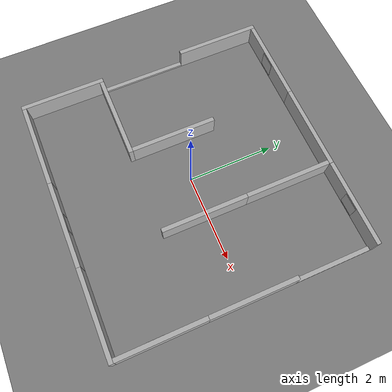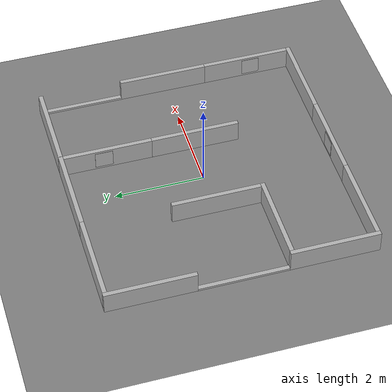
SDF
<sdf version="1.10">
 <world name="default">
  <gravity>0 0 -9.8000000000000007</gravity>
  <magnetic_field>6.0000000000000002e-06 2.3e-05 -4.1999999999999998e-05</magnetic_field>
  <atmosphere type="adiabatic"/>
  <physics name="default_physics" default="false" type="ode">
   <max_step_size>0.001</max_step_size>
   <real_time_factor>1</real_time_factor>
   <real_time_update_rate>1000</real_time_update_rate>
  </physics>
  <scene>
   <ambient>0.400000006 0.400000006 0.400000006 1</ambient>
   <background>0.699999988 0.699999988 0.699999988 1</background>
   <shadows>true</shadows>
  </scene>
  <audio><device>default</device></audio>
  <spherical_coordinates>
   <surface_model>EARTH_WGS84</surface_model>
   <latitude_deg>0</latitude_deg>
   <longitude_deg>0</longitude_deg>
   <elevation>0</elevation>
   <heading_deg>0</heading_deg>
  </spherical_coordinates>
  <model name="ground_plane">
   <static>true</static>
   <link name="link">
    <collision name="collision">
     <geometry><plane><normal>0 0 1</normal><size>100 100</size></plane></geometry>
     <surface>
      <contact><collide_bitmask>65535</collide_bitmask></contact>
      <friction><ode><mu>100</mu><mu2>50</mu2></ode></friction>
     </surface>
    </collision>
    <visual name="visual">
     <cast_shadows>false</cast_shadows>
     <geometry><plane><normal>0 0 1</normal><size>100 100</size></plane></geometry>
     <material>
      <ambient>0.5 0.5 0.5 1</ambient>
      <diffuse>0.5 0.5 0.5 1</diffuse>
      <specular>0.100000001 0.100000001 0.100000001 1</specular>
      <emissive>0 0 0 1</emissive>
     </material>
    </visual>
    <inertial>
     <mass>1</mass>
     <inertia><ixx>1</ixx><ixy>0</ixy><ixz>0</ixz><iyy>1</iyy><iyz>0</iyz><izz>1</izz></inertia>
    </inertial>
   </link>
  </model>
  <model name="minimaze">
   <link name="link_0">
    <inertial>
     <mass>1</mass>
     <inertia>
      <ixx>0.16666700000000001</ixx>
      <ixy>0</ixy>
      <ixz>0</ixz>
      <iyy>0.16666700000000001</iyy>
      <iyz>0</iyz>
      <izz>0.16666700000000001</izz>
     </inertia>
    </inertial>
    <pose>-2.9532099999999999 -1.925 0 0 0 0</pose>
    <visual name="visual">
     <geometry><mesh><uri>file://meshes/bricks1.dae</uri><scale>1 1 1</scale></mesh></geometry>
     <material>
      <lighting>true</lighting>
      <shader type="vertex"><normal_map>__default__</normal_map></shader>
      <ambient>0.300000012 0.300000012 0.300000012 1</ambient>
      <diffuse>0.699999988 0.699999988 0.699999988 1</diffuse>
      <specular>0.00999999978 0.00999999978 0.00999999978 1</specular>
      <emissive>0.5 0.5 0.5 1</emissive>
     </material>
    </visual>
    <collision name="collision">
     <geometry><mesh><uri>file://meshes/bricks1.dae</uri><scale>1 1 1</scale></mesh></geometry>
     <surface>
      <friction>
       <ode><mu>1</mu><mu2>1</mu2><fdir1>0 0 0</fdir1><slip1>0</slip1><slip2>0</slip2></ode>
       <torsional>
        <coefficient>1</coefficient>
        <patch_radius>0</patch_radius>
        <surface_radius>0</surface_radius>
        <use_patch_radius>true</use_patch_radius>
        <ode><slip>0</slip></ode>
       </torsional>
      </friction>
      <bounce><restitution_coefficient>0</restitution_coefficient><threshold>1000000</threshold></bounce>
      <contact>
       <collide_without_contact>false</collide_without_contact>
       <collide_without_contact_bitmask>1</collide_without_contact_bitmask>
       <collide_bitmask>1</collide_bitmask>
       <ode>
        <soft_cfm>0</soft_cfm>
        <soft_erp>0.20000000000000001</soft_erp>
        <kp>10000000000000</kp>
        <kd>1</kd>
        <max_vel>0.01</max_vel>
        <min_depth>0</min_depth>
       </ode>
       <bullet>
        <split_impulse>true</split_impulse>
        <split_impulse_penetration_threshold>-0.01</split_impulse_penetration_threshold>
        <soft_cfm>0</soft_cfm>
        <soft_erp>0.20000000000000001</soft_erp>
        <kp>10000000000000</kp>
        <kd>1</kd>
       </bullet>
      </contact>
     </surface>
    </collision>
   </link>
   <link name="link_0_0">
    <inertial>
     <mass>0.00194483</mass>
     <inertia>
      <ixx>0.00047543999999999999</ixx>
      <ixy>0</ixy>
      <ixz>0</ixz>
      <iyy>4.7999999999999996e-07</iyy>
      <iyz>0</iyz>
      <izz>0.00047572000000000001</izz>
     </inertia>
    </inertial>
    <pose>-2.9532099999999977 0.074598999999990603 -0.22701100000007818 -3.8000000039114689e-05 -1.0000000010293332e-05 5.8672011324199347e-19</pose>
    <visual name="visual">
     <geometry><box><size>0.10000000000000001 2 0.050000000000000003</size></box></geometry>
     <material>
      <lighting>true</lighting>
      <shader type="vertex"><normal_map>__default__</normal_map></shader>
      <ambient>0.300000012 0.300000012 0.300000012 1</ambient>
      <diffuse>0.699999988 0.699999988 0.699999988 1</diffuse>
      <specular>0.00999999978 0.00999999978 0.00999999978 1</specular>
      <emissive>0.400000006 0.400000006 0.400000006 1</emissive>
     </material>
    </visual>
    <collision name="collision">
     <geometry><box><size>0.099999000000000005 2 0.050000000000000003</size></box></geometry>
     <surface>
      <friction>
       <ode><mu>1</mu><mu2>1</mu2><fdir1>0 0 0</fdir1><slip1>0</slip1><slip2>0</slip2></ode>
       <torsional>
        <coefficient>1</coefficient>
        <patch_radius>0</patch_radius>
        <surface_radius>0</surface_radius>
        <use_patch_radius>true</use_patch_radius>
        <ode><slip>0</slip></ode>
       </torsional>
      </friction>
      <bounce><restitution_coefficient>0</restitution_coefficient><threshold>1000000</threshold></bounce>
      <contact>
       <collide_without_contact>false</collide_without_contact>
       <collide_without_contact_bitmask>1</collide_without_contact_bitmask>
       <collide_bitmask>1</collide_bitmask>
       <ode>
        <soft_cfm>0</soft_cfm>
        <soft_erp>0.20000000000000001</soft_erp>
        <kp>10000000000000</kp>
        <kd>1</kd>
        <max_vel>0.01</max_vel>
        <min_depth>0</min_depth>
       </ode>
       <bullet>
        <split_impulse>true</split_impulse>
        <split_impulse_penetration_threshold>-0.01</split_impulse_penetration_threshold>
        <soft_cfm>0</soft_cfm>
        <soft_erp>0.20000000000000001</soft_erp>
        <kp>10000000000000</kp>
        <kd>1</kd>
       </bullet>
      </contact>
     </surface>
    </collision>
   </link>
   <link name="link_0_0_clone">
    <inertial>
     <mass>0.0017755399999999999</mass>
     <inertia>
      <ixx>0.00049366000000000004</ixx>
      <ixy>0</ixy>
      <ixz>0</ixz>
      <iyy>3.8000000000000001e-07</iyy>
      <iyz>0</iyz>
      <izz>0.00049330999999999995</izz>
     </inertia>
    </inertial>
    <pose>3.0467900000000028 2.0737299999999905 -0.22701100000009458 -7.6000000078229338e-05 -2.0000000020586663e-05 7.8229386356444956e-19</pose>
    <visual name="visual_0">
     <geometry><box><size>0.10000000000000001 1.8009999999999999 0.050000000000000003</size></box></geometry>
     <material>
      <lighting>true</lighting>
      <shader type="vertex"><normal_map>__default__</normal_map></shader>
      <ambient>0.300000012 0.300000012 0.300000012 1</ambient>
      <diffuse>0.699999988 0.699999988 0.699999988 1</diffuse>
      <specular>0.00999999978 0.00999999978 0.00999999978 1</specular>
      <emissive>0.400000006 0.400000006 0.400000006 1</emissive>
     </material>
    </visual>
    <collision name="collision">
     <geometry><box><size>0.10000000000000001 1.8009999999999999 0.050000000000000003</size></box></geometry>
     <surface>
      <friction>
       <ode><mu>1</mu><mu2>1</mu2><fdir1>0 0 0</fdir1><slip1>0</slip1><slip2>0</slip2></ode>
       <torsional>
        <coefficient>1</coefficient>
        <patch_radius>0</patch_radius>
        <surface_radius>0</surface_radius>
        <use_patch_radius>true</use_patch_radius>
        <ode><slip>0</slip></ode>
       </torsional>
      </friction>
      <bounce><restitution_coefficient>0</restitution_coefficient><threshold>1000000</threshold></bounce>
      <contact>
       <collide_without_contact>false</collide_without_contact>
       <collide_without_contact_bitmask>1</collide_without_contact_bitmask>
       <collide_bitmask>1</collide_bitmask>
       <ode>
        <soft_cfm>0</soft_cfm>
        <soft_erp>0.20000000000000001</soft_erp>
        <kp>10000000000000</kp>
        <kd>1</kd>
        <max_vel>0.01</max_vel>
        <min_depth>0</min_depth>
       </ode>
       <bullet>
        <split_impulse>true</split_impulse>
        <split_impulse_penetration_threshold>-0.01</split_impulse_penetration_threshold>
        <soft_cfm>0</soft_cfm>
        <soft_erp>0.20000000000000001</soft_erp>
        <kp>10000000000000</kp>
        <kd>1</kd>
       </bullet>
      </contact>
     </surface>
    </collision>
   </link>
   <link name="link_0_clone">
    <inertial>
     <mass>1</mass>
     <inertia>
      <ixx>0.16666700000000001</ixx>
      <ixy>0</ixy>
      <ixz>0</ixz>
      <iyy>0.16666700000000001</iyy>
      <iyz>0</iyz>
      <izz>0.16666700000000001</izz>
     </inertia>
    </inertial>
    <pose>-2.9532100000000003 2.0749999999999993 -1.5640266859406893e-13 -8.9778743081863446e-49 -6.9462937961096311e-23 2.5849394142282115e-26</pose>
    <visual name="visual">
     <geometry><mesh><uri>file://meshes/bricks1.dae</uri><scale>1 1 1</scale></mesh></geometry>
     <material>
      <lighting>true</lighting>
      <shader type="vertex"><normal_map>__default__</normal_map></shader>
      <ambient>0.300000012 0.300000012 0.300000012 1</ambient>
      <diffuse>0.699999988 0.699999988 0.699999988 1</diffuse>
      <specular>0.00999999978 0.00999999978 0.00999999978 1</specular>
      <emissive>0.5 0.5 0.5 1</emissive>
     </material>
    </visual>
    <collision name="collision">
     <geometry><mesh><uri>file://meshes/bricks1.dae</uri><scale>1 1 1</scale></mesh></geometry>
     <surface>
      <friction>
       <ode><mu>1</mu><mu2>1</mu2><fdir1>0 0 0</fdir1><slip1>0</slip1><slip2>0</slip2></ode>
       <torsional>
        <coefficient>1</coefficient>
        <patch_radius>0</patch_radius>
        <surface_radius>0</surface_radius>
        <use_patch_radius>true</use_patch_radius>
        <ode><slip>0</slip></ode>
       </torsional>
      </friction>
      <bounce><restitution_coefficient>0</restitution_coefficient><threshold>1000000</threshold></bounce>
      <contact>
       <collide_without_contact>false</collide_without_contact>
       <collide_without_contact_bitmask>1</collide_without_contact_bitmask>
       <collide_bitmask>1</collide_bitmask>
       <ode>
        <soft_cfm>0</soft_cfm>
        <soft_erp>0.20000000000000001</soft_erp>
        <kp>10000000000000</kp>
        <kd>1</kd>
        <max_vel>0.01</max_vel>
        <min_depth>0</min_depth>
       </ode>
       <bullet>
        <split_impulse>true</split_impulse>
        <split_impulse_penetration_threshold>-0.01</split_impulse_penetration_threshold>
        <soft_cfm>0</soft_cfm>
        <soft_erp>0.20000000000000001</soft_erp>
        <kp>10000000000000</kp>
        <kd>1</kd>
       </bullet>
      </contact>
     </surface>
    </collision>
   </link>
   <link name="link_0_clone_0">
    <inertial>
     <mass>1</mass>
     <inertia>
      <ixx>0.16666700000000001</ixx>
      <ixy>0</ixy>
      <ixz>0</ixz>
      <iyy>0.16666700000000001</iyy>
      <iyz>0</iyz>
      <izz>0.16666700000000001</izz>
     </inertia>
    </inertial>
    <pose>3.046790000000001 -1.8250000000000004 5.7898130734201914e-14 -8.9778743081863446e-49 -6.9462937961096311e-23 2.5849394142282115e-26</pose>
    <visual name="visual">
     <geometry><mesh><uri>file://meshes/bricks1.dae</uri><scale>1 1 1</scale></mesh></geometry>
     <material>
      <lighting>true</lighting>
      <shader type="vertex"><normal_map>__default__</normal_map></shader>
      <ambient>0.300000012 0.300000012 0.300000012 1</ambient>
      <diffuse>0.699999988 0.699999988 0.699999988 1</diffuse>
      <specular>0.00999999978 0.00999999978 0.00999999978 1</specular>
      <emissive>0.5 0.5 0.5 1</emissive>
     </material>
    </visual>
    <collision name="collision">
     <geometry><mesh><uri>file://meshes/bricks1.dae</uri><scale>1 1 1</scale></mesh></geometry>
     <surface>
      <friction>
       <ode><mu>1</mu><mu2>1</mu2><fdir1>0 0 0</fdir1><slip1>0</slip1><slip2>0</slip2></ode>
       <torsional>
        <coefficient>1</coefficient>
        <patch_radius>0</patch_radius>
        <surface_radius>0</surface_radius>
        <use_patch_radius>true</use_patch_radius>
        <ode><slip>0</slip></ode>
       </torsional>
      </friction>
      <bounce><restitution_coefficient>0</restitution_coefficient><threshold>1000000</threshold></bounce>
      <contact>
       <collide_without_contact>false</collide_without_contact>
       <collide_without_contact_bitmask>1</collide_without_contact_bitmask>
       <collide_bitmask>1</collide_bitmask>
       <ode>
        <soft_cfm>0</soft_cfm>
        <soft_erp>0.20000000000000001</soft_erp>
        <kp>10000000000000</kp>
        <kd>1</kd>
        <max_vel>0.01</max_vel>
        <min_depth>0</min_depth>
       </ode>
       <bullet>
        <split_impulse>true</split_impulse>
        <split_impulse_penetration_threshold>-0.01</split_impulse_penetration_threshold>
        <soft_cfm>0</soft_cfm>
        <soft_erp>0.20000000000000001</soft_erp>
        <kp>10000000000000</kp>
        <kd>1</kd>
       </bullet>
      </contact>
     </surface>
    </collision>
   </link>
   <link name="link_0_clone_1">
    <inertial>
     <mass>1</mass>
     <inertia>
      <ixx>0.16666700000000001</ixx>
      <ixy>0</ixy>
      <ixz>0</ixz>
      <iyy>0.16666700000000001</iyy>
      <iyz>0</iyz>
      <izz>0.16666700000000001</izz>
     </inertia>
    </inertial>
    <pose>3.0467900000000006 0.1749999999999996 -2.0289325775024736e-14 -8.9778743081863446e-49 -6.9462937961096311e-23 2.5849394142282115e-26</pose>
    <visual name="visual">
     <geometry><mesh><uri>file://meshes/bricks1.dae</uri><scale>1 1 1</scale></mesh></geometry>
     <material>
      <lighting>true</lighting>
      <shader type="vertex"><normal_map>__default__</normal_map></shader>
      <ambient>0.300000012 0.300000012 0.300000012 1</ambient>
      <diffuse>0.699999988 0.699999988 0.699999988 1</diffuse>
      <specular>0.00999999978 0.00999999978 0.00999999978 1</specular>
      <emissive>0.5 0.5 0.5 1</emissive>
     </material>
    </visual>
    <collision name="collision">
     <geometry><mesh><uri>file://meshes/bricks1.dae</uri><scale>1 1 1</scale></mesh></geometry>
     <surface>
      <friction>
       <ode><mu>1</mu><mu2>1</mu2><fdir1>0 0 0</fdir1><slip1>0</slip1><slip2>0</slip2></ode>
       <torsional>
        <coefficient>1</coefficient>
        <patch_radius>0</patch_radius>
        <surface_radius>0</surface_radius>
        <use_patch_radius>true</use_patch_radius>
        <ode><slip>0</slip></ode>
       </torsional>
      </friction>
      <bounce><restitution_coefficient>0</restitution_coefficient><threshold>1000000</threshold></bounce>
      <contact>
       <collide_without_contact>false</collide_without_contact>
       <collide_without_contact_bitmask>1</collide_without_contact_bitmask>
       <collide_bitmask>1</collide_bitmask>
       <ode>
        <soft_cfm>0</soft_cfm>
        <soft_erp>0.20000000000000001</soft_erp>
        <kp>10000000000000</kp>
        <kd>1</kd>
        <max_vel>0.01</max_vel>
        <min_depth>0</min_depth>
       </ode>
       <bullet>
        <split_impulse>true</split_impulse>
        <split_impulse_penetration_threshold>-0.01</split_impulse_penetration_threshold>
        <soft_cfm>0</soft_cfm>
        <soft_erp>0.20000000000000001</soft_erp>
        <kp>10000000000000</kp>
        <kd>1</kd>
       </bullet>
      </contact>
     </surface>
    </collision>
   </link>
   <link name="link_0_clone_1_clone">
    <inertial>
     <mass>1</mass>
     <inertia>
      <ixx>0.16666700000000001</ixx>
      <ixy>0</ixy>
      <ixz>0</ixz>
      <iyy>0.16666700000000001</iyy>
      <iyz>0</iyz>
      <izz>0.16666700000000001</izz>
     </inertia>
    </inertial>
    <pose>1.0467900000000006 1.9749999999999996 -1.1138312494551883e-13 -8.9778743081863446e-49 -6.9462937961096311e-23 2.5849394142282115e-26</pose>
    <visual name="visual">
     <geometry><mesh><uri>file://meshes/bricks1.dae</uri><scale>1 1 1</scale></mesh></geometry>
     <material>
      <lighting>true</lighting>
      <shader type="vertex"><normal_map>__default__</normal_map></shader>
      <ambient>0.300000012 0.300000012 0.300000012 1</ambient>
      <diffuse>0.699999988 0.699999988 0.699999988 1</diffuse>
      <specular>0.00999999978 0.00999999978 0.00999999978 1</specular>
      <emissive>0.5 0.5 0.5 1</emissive>
     </material>
    </visual>
    <collision name="collision">
     <geometry><mesh><uri>file://meshes/bricks1.dae</uri><scale>1 1 1</scale></mesh></geometry>
     <surface>
      <friction>
       <ode><mu>1</mu><mu2>1</mu2><fdir1>0 0 0</fdir1><slip1>0</slip1><slip2>0</slip2></ode>
       <torsional>
        <coefficient>1</coefficient>
        <patch_radius>0</patch_radius>
        <surface_radius>0</surface_radius>
        <use_patch_radius>true</use_patch_radius>
        <ode><slip>0</slip></ode>
       </torsional>
      </friction>
      <bounce><restitution_coefficient>0</restitution_coefficient><threshold>1000000</threshold></bounce>
      <contact>
       <collide_without_contact>false</collide_without_contact>
       <collide_without_contact_bitmask>1</collide_without_contact_bitmask>
       <collide_bitmask>1</collide_bitmask>
       <ode>
        <soft_cfm>0</soft_cfm>
        <soft_erp>0.20000000000000001</soft_erp>
        <kp>10000000000000</kp>
        <kd>1</kd>
        <max_vel>0.01</max_vel>
        <min_depth>0</min_depth>
       </ode>
       <bullet>
        <split_impulse>true</split_impulse>
        <split_impulse_penetration_threshold>-0.01</split_impulse_penetration_threshold>
        <soft_cfm>0</soft_cfm>
        <soft_erp>0.20000000000000001</soft_erp>
        <kp>10000000000000</kp>
        <kd>1</kd>
       </bullet>
      </contact>
     </surface>
    </collision>
   </link>
   <link name="link_0_clone_1_clone_0">
    <inertial>
     <mass>1</mass>
     <inertia>
      <ixx>0.16666700000000001</ixx>
      <ixy>0</ixy>
      <ixz>0</ixz>
      <iyy>0.16666700000000001</iyy>
      <iyz>0</iyz>
      <izz>0.16666700000000001</izz>
     </inertia>
    </inertial>
    <pose>1.0467900000000006 -0.02500000000000055 -3.3112401709445294e-14 -8.9778743081863446e-49 -6.9462937961096311e-23 2.5849394142282115e-26</pose>
    <visual name="visual">
     <geometry><mesh><uri>file://meshes/bricks1.dae</uri><scale>1 1 1</scale></mesh></geometry>
     <material>
      <lighting>true</lighting>
      <shader type="vertex"><normal_map>__default__</normal_map></shader>
      <ambient>0.300000012 0.300000012 0.300000012 1</ambient>
      <diffuse>0.699999988 0.699999988 0.699999988 1</diffuse>
      <specular>0.00999999978 0.00999999978 0.00999999978 1</specular>
      <emissive>0.5 0.5 0.5 1</emissive>
     </material>
    </visual>
    <collision name="collision">
     <geometry><mesh><uri>file://meshes/bricks1.dae</uri><scale>1 1 1</scale></mesh></geometry>
     <surface>
      <friction>
       <ode><mu>1</mu><mu2>1</mu2><fdir1>0 0 0</fdir1><slip1>0</slip1><slip2>0</slip2></ode>
       <torsional>
        <coefficient>1</coefficient>
        <patch_radius>0</patch_radius>
        <surface_radius>0</surface_radius>
        <use_patch_radius>true</use_patch_radius>
        <ode><slip>0</slip></ode>
       </torsional>
      </friction>
      <bounce><restitution_coefficient>0</restitution_coefficient><threshold>1000000</threshold></bounce>
      <contact>
       <collide_without_contact>false</collide_without_contact>
       <collide_without_contact_bitmask>1</collide_without_contact_bitmask>
       <collide_bitmask>1</collide_bitmask>
       <ode>
        <soft_cfm>0</soft_cfm>
        <soft_erp>0.20000000000000001</soft_erp>
        <kp>10000000000000</kp>
        <kd>1</kd>
        <max_vel>0.01</max_vel>
        <min_depth>0</min_depth>
       </ode>
       <bullet>
        <split_impulse>true</split_impulse>
        <split_impulse_penetration_threshold>-0.01</split_impulse_penetration_threshold>
        <soft_cfm>0</soft_cfm>
        <soft_erp>0.20000000000000001</soft_erp>
        <kp>10000000000000</kp>
        <kd>1</kd>
       </bullet>
      </contact>
     </surface>
    </collision>
   </link>
   <link name="link_0_clone_1_clone_1">
    <inertial>
     <mass>1</mass>
     <inertia>
      <ixx>0.16666700000000001</ixx>
      <ixy>0</ixy>
      <ixz>0</ixz>
      <iyy>0.16666700000000001</iyy>
      <iyz>0</iyz>
      <izz>0.16666700000000001</izz>
     </inertia>
    </inertial>
    <pose>-0.95321399999999956 0.074999999999999484 -5.7565063826814367e-14 -8.9778743081863446e-49 -6.9462937961096311e-23 2.5849394142282115e-26</pose>
    <visual name="visual">
     <geometry><mesh><uri>file://meshes/bricks1.dae</uri><scale>1 1 1</scale></mesh></geometry>
     <material>
      <lighting>true</lighting>
      <shader type="vertex"><normal_map>__default__</normal_map></shader>
      <ambient>0.300000012 0.300000012 0.300000012 1</ambient>
      <diffuse>0.699999988 0.699999988 0.699999988 1</diffuse>
      <specular>0.00999999978 0.00999999978 0.00999999978 1</specular>
      <emissive>0.5 0.5 0.5 1</emissive>
     </material>
    </visual>
    <collision name="collision">
     <geometry><mesh><uri>file://meshes/bricks1.dae</uri><scale>1 1 1</scale></mesh></geometry>
     <surface>
      <friction>
       <ode><mu>1</mu><mu2>1</mu2><fdir1>0 0 0</fdir1><slip1>0</slip1><slip2>0</slip2></ode>
       <torsional>
        <coefficient>1</coefficient>
        <patch_radius>0</patch_radius>
        <surface_radius>0</surface_radius>
        <use_patch_radius>true</use_patch_radius>
        <ode><slip>0</slip></ode>
       </torsional>
      </friction>
      <bounce><restitution_coefficient>0</restitution_coefficient><threshold>1000000</threshold></bounce>
      <contact>
       <collide_without_contact>false</collide_without_contact>
       <collide_without_contact_bitmask>1</collide_without_contact_bitmask>
       <collide_bitmask>1</collide_bitmask>
       <ode>
        <soft_cfm>0</soft_cfm>
        <soft_erp>0.20000000000000001</soft_erp>
        <kp>10000000000000</kp>
        <kd>1</kd>
        <max_vel>0.01</max_vel>
        <min_depth>0</min_depth>
       </ode>
       <bullet>
        <split_impulse>true</split_impulse>
        <split_impulse_penetration_threshold>-0.01</split_impulse_penetration_threshold>
        <soft_cfm>0</soft_cfm>
        <soft_erp>0.20000000000000001</soft_erp>
        <kp>10000000000000</kp>
        <kd>1</kd>
       </bullet>
      </contact>
     </surface>
    </collision>
   </link>
   <link name="link_1">
    <inertial>
     <mass>1</mass>
     <inertia>
      <ixx>0.16666700000000001</ixx>
      <ixy>0</ixy>
      <ixz>0</ixz>
      <iyy>0.16666700000000001</iyy>
      <iyz>0</iyz>
      <izz>0.16666700000000001</izz>
     </inertia>
    </inertial>
    <pose>-1.9032099999999998 -0.97500000000000064 -2.6284530108000581e-14 -8.9778743081863446e-49 -6.9462937961096311e-23 2.5849394142282115e-26</pose>
    <visual name="visual">
     <geometry><mesh><uri>file://meshes/bricks2.dae</uri><scale>1 1 1</scale></mesh></geometry>
     <material>
      <lighting>true</lighting>
      <shader type="vertex"><normal_map>__default__</normal_map></shader>
      <ambient>0.300000012 0.300000012 0.300000012 1</ambient>
      <diffuse>0.699999988 0.699999988 0.699999988 1</diffuse>
      <specular>0.00999999978 0.00999999978 0.00999999978 1</specular>
      <emissive>0.5 0.5 0.5 1</emissive>
     </material>
    </visual>
    <collision name="collision">
     <geometry><mesh><uri>file://meshes/bricks2.dae</uri><scale>1 1 1</scale></mesh></geometry>
     <surface>
      <friction>
       <ode><mu>1</mu><mu2>1</mu2><fdir1>0 0 0</fdir1><slip1>0</slip1><slip2>0</slip2></ode>
       <torsional>
        <coefficient>1</coefficient>
        <patch_radius>0</patch_radius>
        <surface_radius>0</surface_radius>
        <use_patch_radius>true</use_patch_radius>
        <ode><slip>0</slip></ode>
       </torsional>
      </friction>
      <bounce><restitution_coefficient>0</restitution_coefficient><threshold>1000000</threshold></bounce>
      <contact>
       <collide_without_contact>false</collide_without_contact>
       <collide_without_contact_bitmask>1</collide_without_contact_bitmask>
       <collide_bitmask>1</collide_bitmask>
       <ode>
        <soft_cfm>0</soft_cfm>
        <soft_erp>0.20000000000000001</soft_erp>
        <kp>10000000000000</kp>
        <kd>1</kd>
        <max_vel>0.01</max_vel>
        <min_depth>0</min_depth>
       </ode>
       <bullet>
        <split_impulse>true</split_impulse>
        <split_impulse_penetration_threshold>-0.01</split_impulse_penetration_threshold>
        <soft_cfm>0</soft_cfm>
        <soft_erp>0.20000000000000001</soft_erp>
        <kp>10000000000000</kp>
        <kd>1</kd>
       </bullet>
      </contact>
     </surface>
    </collision>
   </link>
   <link name="link_1_clone">
    <inertial>
     <mass>1</mass>
     <inertia>
      <ixx>0.16666700000000001</ixx>
      <ixy>0</ixy>
      <ixz>0</ixz>
      <iyy>0.16666700000000001</iyy>
      <iyz>0</iyz>
      <izz>0.16666700000000001</izz>
     </inertia>
    </inertial>
    <pose>-1.9032099999999996 -2.8750000000000004 4.7961634663806763e-14 -8.9778743081863446e-49 -6.9462937961096311e-23 2.5849394142282115e-26</pose>
    <visual name="visual">
     <geometry><mesh><uri>file://meshes/bricks2.dae</uri><scale>1 1 1</scale></mesh></geometry>
     <material>
      <lighting>true</lighting>
      <shader type="vertex"><normal_map>__default__</normal_map></shader>
      <ambient>0.300000012 0.300000012 0.300000012 1</ambient>
      <diffuse>0.699999988 0.699999988 0.699999988 1</diffuse>
      <specular>0.00999999978 0.00999999978 0.00999999978 1</specular>
      <emissive>0.5 0.5 0.5 1</emissive>
     </material>
    </visual>
    <collision name="collision">
     <geometry><mesh><uri>file://meshes/bricks2.dae</uri><scale>1 1 1</scale></mesh></geometry>
     <surface>
      <friction>
       <ode><mu>1</mu><mu2>1</mu2><fdir1>0 0 0</fdir1><slip1>0</slip1><slip2>0</slip2></ode>
       <torsional>
        <coefficient>1</coefficient>
        <patch_radius>0</patch_radius>
        <surface_radius>0</surface_radius>
        <use_patch_radius>true</use_patch_radius>
        <ode><slip>0</slip></ode>
       </torsional>
      </friction>
      <bounce><restitution_coefficient>0</restitution_coefficient><threshold>1000000</threshold></bounce>
      <contact>
       <collide_without_contact>false</collide_without_contact>
       <collide_without_contact_bitmask>1</collide_without_contact_bitmask>
       <collide_bitmask>1</collide_bitmask>
       <ode>
        <soft_cfm>0</soft_cfm>
        <soft_erp>0.20000000000000001</soft_erp>
        <kp>10000000000000</kp>
        <kd>1</kd>
        <max_vel>0.01</max_vel>
        <min_depth>0</min_depth>
       </ode>
       <bullet>
        <split_impulse>true</split_impulse>
        <split_impulse_penetration_threshold>-0.01</split_impulse_penetration_threshold>
        <soft_cfm>0</soft_cfm>
        <soft_erp>0.20000000000000001</soft_erp>
        <kp>10000000000000</kp>
        <kd>1</kd>
       </bullet>
      </contact>
     </surface>
    </collision>
   </link>
   <link name="link_1_clone_0">
    <inertial>
     <mass>1</mass>
     <inertia>
      <ixx>0.16666700000000001</ixx>
      <ixy>0</ixy>
      <ixz>0</ixz>
      <iyy>0.16666700000000001</iyy>
      <iyz>0</iyz>
      <izz>0.16666700000000001</izz>
     </inertia>
    </inertial>
    <pose>0.096786000000000261 -2.8750000000000004 6.8556271770603416e-14 -8.9778743081863446e-49 -6.9462937961096311e-23 2.5849394142282115e-26</pose>
    <visual name="visual">
     <geometry><mesh><uri>file://meshes/bricks2.dae</uri><scale>1 1 1</scale></mesh></geometry>
     <material>
      <lighting>true</lighting>
      <shader type="vertex"><normal_map>__default__</normal_map></shader>
      <ambient>0.300000012 0.300000012 0.300000012 1</ambient>
      <diffuse>0.699999988 0.699999988 0.699999988 1</diffuse>
      <specular>0.00999999978 0.00999999978 0.00999999978 1</specular>
      <emissive>0.5 0.5 0.5 1</emissive>
     </material>
    </visual>
    <collision name="collision">
     <geometry><mesh><uri>file://meshes/bricks2.dae</uri><scale>1 1 1</scale></mesh></geometry>
     <surface>
      <friction>
       <ode><mu>1</mu><mu2>1</mu2><fdir1>0 0 0</fdir1><slip1>0</slip1><slip2>0</slip2></ode>
       <torsional>
        <coefficient>1</coefficient>
        <patch_radius>0</patch_radius>
        <surface_radius>0</surface_radius>
        <use_patch_radius>true</use_patch_radius>
        <ode><slip>0</slip></ode>
       </torsional>
      </friction>
      <bounce><restitution_coefficient>0</restitution_coefficient><threshold>1000000</threshold></bounce>
      <contact>
       <collide_without_contact>false</collide_without_contact>
       <collide_without_contact_bitmask>1</collide_without_contact_bitmask>
       <collide_bitmask>1</collide_bitmask>
       <ode>
        <soft_cfm>0</soft_cfm>
        <soft_erp>0.20000000000000001</soft_erp>
        <kp>10000000000000</kp>
        <kd>1</kd>
        <max_vel>0.01</max_vel>
        <min_depth>0</min_depth>
       </ode>
       <bullet>
        <split_impulse>true</split_impulse>
        <split_impulse_penetration_threshold>-0.01</split_impulse_penetration_threshold>
        <soft_cfm>0</soft_cfm>
        <soft_erp>0.20000000000000001</soft_erp>
        <kp>10000000000000</kp>
        <kd>1</kd>
       </bullet>
      </contact>
     </surface>
    </collision>
   </link>
   <link name="link_1_clone_1">
    <inertial>
     <mass>1</mass>
     <inertia>
      <ixx>0.16666700000000001</ixx>
      <ixy>0</ixy>
      <ixz>0</ixz>
      <iyy>0.16666700000000001</iyy>
      <iyz>0</iyz>
      <izz>0.16666700000000001</izz>
     </inertia>
    </inertial>
    <pose>2.0967900000000004 -2.875 8.9178664453015699e-14 -8.9778743081863446e-49 -6.9462937961096311e-23 2.5849394142282115e-26</pose>
    <visual name="visual">
     <geometry><mesh><uri>file://meshes/bricks2.dae</uri><scale>1 1 1</scale></mesh></geometry>
     <material>
      <lighting>true</lighting>
      <shader type="vertex"><normal_map>__default__</normal_map></shader>
      <ambient>0.300000012 0.300000012 0.300000012 1</ambient>
      <diffuse>0.699999988 0.699999988 0.699999988 1</diffuse>
      <specular>0.00999999978 0.00999999978 0.00999999978 1</specular>
      <emissive>0.5 0.5 0.5 1</emissive>
     </material>
    </visual>
    <collision name="collision">
     <geometry><mesh><uri>file://meshes/bricks2.dae</uri><scale>1 1 1</scale></mesh></geometry>
     <surface>
      <friction>
       <ode><mu>1</mu><mu2>1</mu2><fdir1>0 0 0</fdir1><slip1>0</slip1><slip2>0</slip2></ode>
       <torsional>
        <coefficient>1</coefficient>
        <patch_radius>0</patch_radius>
        <surface_radius>0</surface_radius>
        <use_patch_radius>true</use_patch_radius>
        <ode><slip>0</slip></ode>
       </torsional>
      </friction>
      <bounce><restitution_coefficient>0</restitution_coefficient><threshold>1000000</threshold></bounce>
      <contact>
       <collide_without_contact>false</collide_without_contact>
       <collide_without_contact_bitmask>1</collide_without_contact_bitmask>
       <collide_bitmask>1</collide_bitmask>
       <ode>
        <soft_cfm>0</soft_cfm>
        <soft_erp>0.20000000000000001</soft_erp>
        <kp>10000000000000</kp>
        <kd>1</kd>
        <max_vel>0.01</max_vel>
        <min_depth>0</min_depth>
       </ode>
       <bullet>
        <split_impulse>true</split_impulse>
        <split_impulse_penetration_threshold>-0.01</split_impulse_penetration_threshold>
        <soft_cfm>0</soft_cfm>
        <soft_erp>0.20000000000000001</soft_erp>
        <kp>10000000000000</kp>
        <kd>1</kd>
       </bullet>
      </contact>
     </surface>
    </collision>
   </link>
   <link name="link_1_clone_clone">
    <inertial>
     <mass>1</mass>
     <inertia>
      <ixx>0.16666700000000001</ixx>
      <ixy>0</ixy>
      <ixz>0</ixz>
      <iyy>0.16666700000000001</iyy>
      <iyz>0</iyz>
      <izz>0.16666700000000001</izz>
     </inertia>
    </inertial>
    <pose>-1.9032099999999998 3.024999999999999 -1.827704654289164e-13 -8.9778743081863446e-49 -6.9462937961096311e-23 2.5849394142282115e-26</pose>
    <visual name="visual">
     <geometry><mesh><uri>file://meshes/bricks2.dae</uri><scale>1 1 1</scale></mesh></geometry>
     <material>
      <lighting>true</lighting>
      <shader type="vertex"><normal_map>__default__</normal_map></shader>
      <ambient>0.300000012 0.300000012 0.300000012 1</ambient>
      <diffuse>0.699999988 0.699999988 0.699999988 1</diffuse>
      <specular>0.00999999978 0.00999999978 0.00999999978 1</specular>
      <emissive>0.5 0.5 0.5 1</emissive>
     </material>
    </visual>
    <collision name="collision">
     <geometry><mesh><uri>file://meshes/bricks2.dae</uri><scale>1 1 1</scale></mesh></geometry>
     <surface>
      <friction>
       <ode><mu>1</mu><mu2>1</mu2><fdir1>0 0 0</fdir1><slip1>0</slip1><slip2>0</slip2></ode>
       <torsional>
        <coefficient>1</coefficient>
        <patch_radius>0</patch_radius>
        <surface_radius>0</surface_radius>
        <use_patch_radius>true</use_patch_radius>
        <ode><slip>0</slip></ode>
       </torsional>
      </friction>
      <bounce><restitution_coefficient>0</restitution_coefficient><threshold>1000000</threshold></bounce>
      <contact>
       <collide_without_contact>false</collide_without_contact>
       <collide_without_contact_bitmask>1</collide_without_contact_bitmask>
       <collide_bitmask>1</collide_bitmask>
       <ode>
        <soft_cfm>0</soft_cfm>
        <soft_erp>0.20000000000000001</soft_erp>
        <kp>10000000000000</kp>
        <kd>1</kd>
        <max_vel>0.01</max_vel>
        <min_depth>0</min_depth>
       </ode>
       <bullet>
        <split_impulse>true</split_impulse>
        <split_impulse_penetration_threshold>-0.01</split_impulse_penetration_threshold>
        <soft_cfm>0</soft_cfm>
        <soft_erp>0.20000000000000001</soft_erp>
        <kp>10000000000000</kp>
        <kd>1</kd>
       </bullet>
      </contact>
     </surface>
    </collision>
   </link>
   <link name="link_1_clone_clone_0">
    <inertial>
     <mass>1</mass>
     <inertia>
      <ixx>0.16666700000000001</ixx>
      <ixy>0</ixy>
      <ixz>0</ixz>
      <iyy>0.16666700000000001</iyy>
      <iyz>0</iyz>
      <izz>0.16666700000000001</izz>
     </inertia>
    </inertial>
    <pose>0.091786000000000256 3.024999999999999 -1.6239787292704477e-13 -8.9778743081863446e-49 -6.9462937961096311e-23 2.5849394142282115e-26</pose>
    <visual name="visual">
     <geometry><mesh><uri>file://meshes/bricks2.dae</uri><scale>1 1 1</scale></mesh></geometry>
     <material>
      <lighting>true</lighting>
      <shader type="vertex"><normal_map>__default__</normal_map></shader>
      <ambient>0.300000012 0.300000012 0.300000012 1</ambient>
      <diffuse>0.699999988 0.699999988 0.699999988 1</diffuse>
      <specular>0.00999999978 0.00999999978 0.00999999978 1</specular>
      <emissive>0.5 0.5 0.5 1</emissive>
     </material>
    </visual>
    <collision name="collision">
     <geometry><mesh><uri>file://meshes/bricks2.dae</uri><scale>1 1 1</scale></mesh></geometry>
     <surface>
      <friction>
       <ode><mu>1</mu><mu2>1</mu2><fdir1>0 0 0</fdir1><slip1>0</slip1><slip2>0</slip2></ode>
       <torsional>
        <coefficient>1</coefficient>
        <patch_radius>0</patch_radius>
        <surface_radius>0</surface_radius>
        <use_patch_radius>true</use_patch_radius>
        <ode><slip>0</slip></ode>
       </torsional>
      </friction>
      <bounce><restitution_coefficient>0</restitution_coefficient><threshold>1000000</threshold></bounce>
      <contact>
       <collide_without_contact>false</collide_without_contact>
       <collide_without_contact_bitmask>1</collide_without_contact_bitmask>
       <collide_bitmask>1</collide_bitmask>
       <ode>
        <soft_cfm>0</soft_cfm>
        <soft_erp>0.20000000000000001</soft_erp>
        <kp>10000000000000</kp>
        <kd>1</kd>
        <max_vel>0.01</max_vel>
        <min_depth>0</min_depth>
       </ode>
       <bullet>
        <split_impulse>true</split_impulse>
        <split_impulse_penetration_threshold>-0.01</split_impulse_penetration_threshold>
        <soft_cfm>0</soft_cfm>
        <soft_erp>0.20000000000000001</soft_erp>
        <kp>10000000000000</kp>
        <kd>1</kd>
       </bullet>
      </contact>
     </surface>
    </collision>
   </link>
   <link name="link_1_clone_clone_1">
    <inertial>
     <mass>1</mass>
     <inertia>
      <ixx>0.16666700000000001</ixx>
      <ixy>0</ixy>
      <ixz>0</ixz>
      <iyy>0.16666700000000001</iyy>
      <iyz>0</iyz>
      <izz>0.16666700000000001</izz>
     </inertia>
    </inertial>
    <pose>2.0967899999999995 3.0249999999999995 -1.4171996909340123e-13 -8.9778743081863446e-49 -6.9462937961096311e-23 2.5849394142282115e-26</pose>
    <visual name="visual">
     <geometry><mesh><uri>file://meshes/bricks2.dae</uri><scale>1 1 1</scale></mesh></geometry>
     <material>
      <lighting>true</lighting>
      <shader type="vertex"><normal_map>__default__</normal_map></shader>
      <ambient>0.300000012 0.300000012 0.300000012 1</ambient>
      <diffuse>0.699999988 0.699999988 0.699999988 1</diffuse>
      <specular>0.00999999978 0.00999999978 0.00999999978 1</specular>
      <emissive>0.5 0.5 0.5 1</emissive>
     </material>
    </visual>
    <collision name="collision">
     <geometry><mesh><uri>file://meshes/bricks2.dae</uri><scale>1 1 1</scale></mesh></geometry>
     <surface>
      <friction>
       <ode><mu>1</mu><mu2>1</mu2><fdir1>0 0 0</fdir1><slip1>0</slip1><slip2>0</slip2></ode>
       <torsional>
        <coefficient>1</coefficient>
        <patch_radius>0</patch_radius>
        <surface_radius>0</surface_radius>
        <use_patch_radius>true</use_patch_radius>
        <ode><slip>0</slip></ode>
       </torsional>
      </friction>
      <bounce><restitution_coefficient>0</restitution_coefficient><threshold>1000000</threshold></bounce>
      <contact>
       <collide_without_contact>false</collide_without_contact>
       <collide_without_contact_bitmask>1</collide_without_contact_bitmask>
       <collide_bitmask>1</collide_bitmask>
       <ode>
        <soft_cfm>0</soft_cfm>
        <soft_erp>0.20000000000000001</soft_erp>
        <kp>10000000000000</kp>
        <kd>1</kd>
        <max_vel>0.01</max_vel>
        <min_depth>0</min_depth>
       </ode>
       <bullet>
        <split_impulse>true</split_impulse>
        <split_impulse_penetration_threshold>-0.01</split_impulse_penetration_threshold>
        <soft_cfm>0</soft_cfm>
        <soft_erp>0.20000000000000001</soft_erp>
        <kp>10000000000000</kp>
        <kd>1</kd>
       </bullet>
      </contact>
     </surface>
    </collision>
   </link>
   <static>true</static>
   <pose>-0.052929999999999998 -0.070389999999999994 0.245283 3.8000000000000002e-05 1.0000000000000001e-05 0</pose>
  </model>
  <model name="marker2">
   <static>true</static>
   <link name="link">
    <visual name="visual">
     <geometry>
      <mesh>
       <uri>models/marker2/meshes/Marker2.dae</uri>
       <scale>0.80000000000000004 0.80000000000000004 0.80000000000000004</scale>
      </mesh>
     </geometry>
    </visual>
    <inertial>
     <mass>1</mass>
     <inertia><ixx>1</ixx><ixy>0</ixy><ixz>0</ixz><iyy>1</iyy><iyz>0</iyz><izz>1</izz></inertia>
    </inertial>
   </link>
   <pose>0.93999999999999995 2 0.050000000000000003 0 0 0</pose>
  </model>
  <model name="marker1">
   <static>true</static>
   <link name="link">
    <visual name="visual">
     <geometry>
      <mesh>
       <uri>models/marker1/meshes/Marker1.dae</uri>
       <scale>0.80000000000000004 0.80000000000000004 0.80000000000000004</scale>
      </mesh>
     </geometry>
    </visual>
    <inertial>
     <mass>1</mass>
     <inertia><ixx>1</ixx><ixy>0</ixy><ixz>0</ixz><iyy>1</iyy><iyz>0</iyz><izz>1</izz></inertia>
    </inertial>
   </link>
   <pose>-2 2.8999999999999999 0.050000000000000003 0 0 1.5700000000000001</pose>
  </model>
  <model name="marker5">
   <static>true</static>
   <link name="link">
    <visual name="visual">
     <geometry>
      <mesh>
       <uri>models/marker5/meshes/Marker5.dae</uri>
       <scale>0.80000000000000004 0.80000000000000004 0.80000000000000004</scale>
      </mesh>
     </geometry>
    </visual>
    <inertial>
     <mass>1</mass>
     <inertia><ixx>1</ixx><ixy>0</ixy><ixz>0</ixz><iyy>1</iyy><iyz>0</iyz><izz>1</izz></inertia>
    </inertial>
   </link>
   <pose>2 2.8999999999999999 0.050000000000000003 0 0 1.5700000000000001</pose>
  </model>
  <model name="marker4">
   <static>true</static>
   <link name="link">
    <visual name="visual">
     <geometry>
      <mesh>
       <uri>models/marker4/meshes/Marker4.dae</uri>
       <scale>0.80000000000000004 0.80000000000000004 0.80000000000000004</scale>
      </mesh>
     </geometry>
    </visual>
    <inertial>
     <mass>1</mass>
     <inertia><ixx>1</ixx><ixy>0</ixy><ixz>0</ixz><iyy>1</iyy><iyz>0</iyz><izz>1</izz></inertia>
    </inertial>
   </link>
   <pose>2.9399999999999999 -2 0.050000000000000003 0 0 0</pose>
  </model>
  <model name="marker3">
   <static>true</static>
   <link name="link">
    <visual name="visual">
     <geometry>
      <mesh>
       <uri>models/marker3/meshes/Marker3.dae</uri>
       <scale>0.80000000000000004 0.80000000000000004 0.80000000000000004</scale>
      </mesh>
     </geometry>
    </visual>
    <inertial>
     <mass>1</mass>
     <inertia><ixx>1</ixx><ixy>0</ixy><ixz>0</ixz><iyy>1</iyy><iyz>0</iyz><izz>1</izz></inertia>
    </inertial>
   </link>
   <pose>0 -2.8900000000000001 0.050000000000000003 0 0 -1.5700000000000001</pose>
  </model>
  <light name="sun" type="directional">
   <pose>0 0 10 0 0 0</pose>
   <intensity>1</intensity>
   <direction>-0.5 0.10000000000000001 -0.90000000000000002</direction>
   <diffuse>0.800000012 0.800000012 0.800000012 1</diffuse>
   <specular>0.200000003 0.200000003 0.200000003 1</specular>
   <attenuation>
    <range>1000</range>
    <linear>0.01</linear>
    <constant>0.90000000000000002</constant>
    <quadratic>0.001</quadratic>
   </attenuation>
   <spot><inner_angle>0</inner_angle><outer_angle>0</outer_angle><falloff>0</falloff></spot>
  </light>
 </world>
</sdf>
